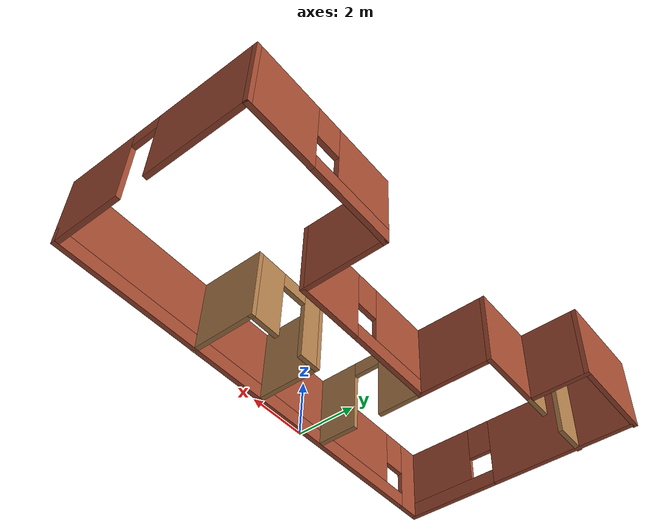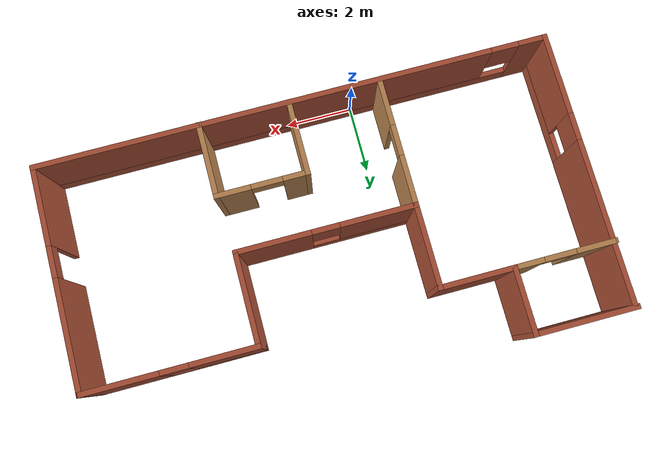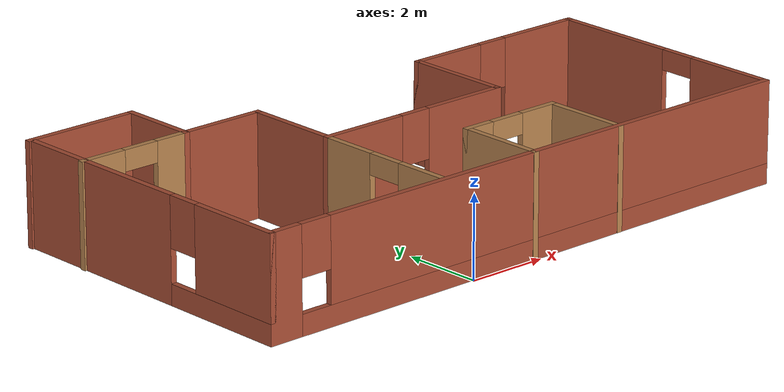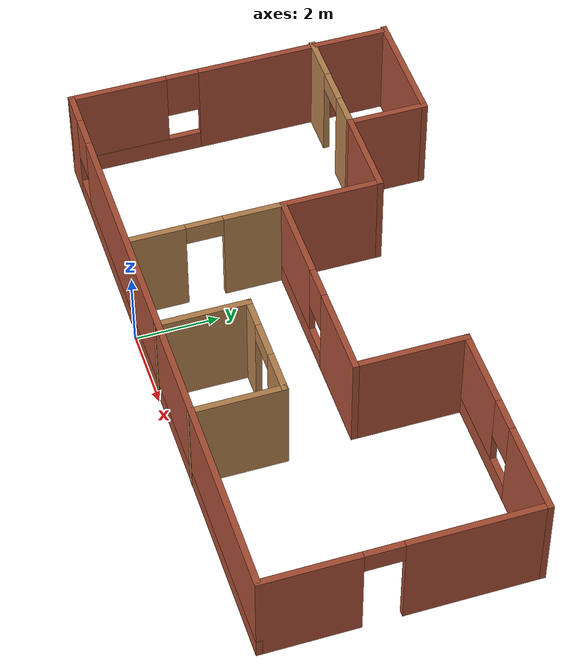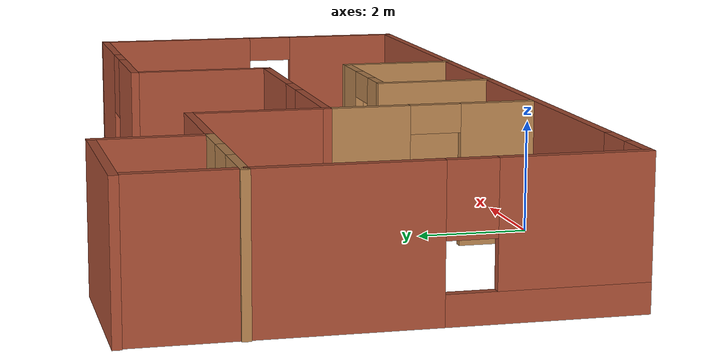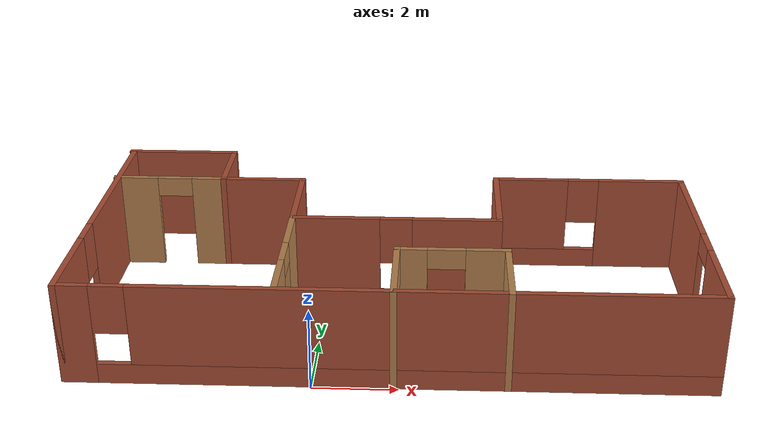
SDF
<?xml version='1.0'?>
<sdf version='1.6'>
  <model name='School'>
    <pose frame=''>1.72931 4.07996 0 0 -0 0</pose>
    <link name='Wall_10'>
      <collision name='Wall_10_Collision'>
        <geometry>
          <box>
            <size>2.25 0.15 2.5</size>
          </box>
        </geometry>
        <pose frame=''>0 0 1.25 0 -0 0</pose>
      </collision>
      <visual name='Wall_10_Visual'>
        <pose frame=''>0 0 1.25 0 -0 0</pose>
        <geometry>
          <box>
            <size>2.25 0.15 2.5</size>
          </box>
        </geometry>
        <material>
          <script>
            <uri>file://media/materials/scripts/gazebo.material</uri>
            <name>Gazebo/Bricks</name>
          </script>
          <ambient>1 1 1 1</ambient>
        </material>
        <meta>
          <layer>0</layer>
        </meta>
      </visual>
      <pose frame=''>-3.55 2.12783 0 0 -0 3.14159</pose>
    </link>
    <link name='Wall_15'>
      <collision name='Wall_15_Collision'>
        <geometry>
          <box>
            <size>2 0.15 2.5</size>
          </box>
        </geometry>
        <pose frame=''>0 0 1.25 0 -0 0</pose>
      </collision>
      <visual name='Wall_15_Visual'>
        <pose frame=''>0 0 1.25 0 -0 0</pose>
        <geometry>
          <box>
            <size>2 0.15 2.5</size>
          </box>
        </geometry>
        <material>
          <script>
            <uri>file://media/materials/scripts/gazebo.material</uri>
            <name>Gazebo/Bricks</name>
          </script>
          <ambient>1 1 1 1</ambient>
        </material>
        <meta>
          <layer>0</layer>
        </meta>
      </visual>
      <pose frame=''>-4.6 3.05282 0 0 -0 1.5708</pose>
    </link>
    <link name='Wall_16'>
      <collision name='Wall_16_Collision'>
        <geometry>
          <box>
            <size>3 0.15 2.5</size>
          </box>
        </geometry>
        <pose frame=''>0 0 1.25 0 -0 0</pose>
      </collision>
      <visual name='Wall_16_Visual'>
        <pose frame=''>0 0 1.25 0 -0 0</pose>
        <geometry>
          <box>
            <size>3 0.15 2.5</size>
          </box>
        </geometry>
        <material>
          <script>
            <uri>file://media/materials/scripts/gazebo.material</uri>
            <name>Gazebo/Bricks</name>
          </script>
          <ambient>1 1 1 1</ambient>
        </material>
        <meta>
          <layer>0</layer>
        </meta>
      </visual>
      <pose frame=''>-6.025 3.97783 0 0 -0 3.14159</pose>
    </link>
    <link name='Wall_21'>
      <pose frame=''>-6.025 2.12783 0 0 -0 3.14159</pose>
      <visual name='Wall_21_Visual_0'>
        <pose frame=''>-1.04133 0 1.25 0 -0 0</pose>
        <geometry>
          <box>
            <size>0.91735 0.15 2.5</size>
          </box>
        </geometry>
        <material>
          <script>
            <uri>file://media/materials/scripts/gazebo.material</uri>
            <name>Gazebo/Wood</name>
          </script>
          <ambient>1 1 1 1</ambient>
        </material>
        <meta>
          <layer>0</layer>
        </meta>
      </visual>
      <collision name='Wall_21_Collision_0'>
        <geometry>
          <box>
            <size>0.91735 0.15 2.5</size>
          </box>
        </geometry>
        <pose frame=''>-1.04133 0 1.25 0 -0 0</pose>
      </collision>
      <visual name='Wall_21_Visual_1'>
        <pose frame=''>0.908675 0 1.25 0 -0 0</pose>
        <geometry>
          <box>
            <size>1.18265 0.15 2.5</size>
          </box>
        </geometry>
        <material>
          <script>
            <uri>file://media/materials/scripts/gazebo.material</uri>
            <name>Gazebo/Wood</name>
          </script>
          <ambient>1 1 1 1</ambient>
        </material>
        <meta>
          <layer>0</layer>
        </meta>
      </visual>
      <collision name='Wall_21_Collision_1'>
        <geometry>
          <box>
            <size>1.18265 0.15 2.5</size>
          </box>
        </geometry>
        <pose frame=''>0.908675 0 1.25 0 -0 0</pose>
      </collision>
      <visual name='Wall_21_Visual_2'>
        <pose frame=''>-0.13265 0 2.25 0 -0 0</pose>
        <geometry>
          <box>
            <size>0.9 0.15 0.5</size>
          </box>
        </geometry>
        <material>
          <script>
            <uri>file://media/materials/scripts/gazebo.material</uri>
            <name>Gazebo/Wood</name>
          </script>
          <ambient>1 1 1 1</ambient>
        </material>
        <meta>
          <layer>0</layer>
        </meta>
      </visual>
      <collision name='Wall_21_Collision_2'>
        <geometry>
          <box>
            <size>0.9 0.15 0.5</size>
          </box>
        </geometry>
        <pose frame=''>-0.13265 0 2.25 0 -0 0</pose>
      </collision>
    </link>
    <link name='Wall_23'>
      <pose frame=''>-2.5 -2.02217 0 0 0 -1.5708</pose>
      <visual name='Wall_23_Visual_0'>
        <pose frame=''>-1.11042 0 1.25 0 -0 0</pose>
        <geometry>
          <box>
            <size>1.52915 0.15 2.5</size>
          </box>
        </geometry>
        <material>
          <script>
            <uri>file://media/materials/scripts/gazebo.material</uri>
            <name>Gazebo/Wood</name>
          </script>
          <ambient>1 1 1 1</ambient>
        </material>
        <meta>
          <layer>0</layer>
        </meta>
      </visual>
      <collision name='Wall_23_Collision_0'>
        <geometry>
          <box>
            <size>1.52915 0.15 2.5</size>
          </box>
        </geometry>
        <pose frame=''>-1.11042 0 1.25 0 -0 0</pose>
      </collision>
      <visual name='Wall_23_Visual_1'>
        <pose frame=''>1.21457 0 1.25 0 -0 0</pose>
        <geometry>
          <box>
            <size>1.32085 0.15 2.5</size>
          </box>
        </geometry>
        <material>
          <script>
            <uri>file://media/materials/scripts/gazebo.material</uri>
            <name>Gazebo/Wood</name>
          </script>
          <ambient>1 1 1 1</ambient>
        </material>
        <meta>
          <layer>0</layer>
        </meta>
      </visual>
      <collision name='Wall_23_Collision_1'>
        <geometry>
          <box>
            <size>1.32085 0.15 2.5</size>
          </box>
        </geometry>
        <pose frame=''>1.21457 0 1.25 0 -0 0</pose>
      </collision>
      <visual name='Wall_23_Visual_2'>
        <pose frame=''>0.10415 0 2.25 0 -0 0</pose>
        <geometry>
          <box>
            <size>0.9 0.15 0.5</size>
          </box>
        </geometry>
        <material>
          <script>
            <uri>file://media/materials/scripts/gazebo.material</uri>
            <name>Gazebo/Wood</name>
          </script>
          <ambient>1 1 1 1</ambient>
        </material>
        <meta>
          <layer>0</layer>
        </meta>
      </visual>
      <collision name='Wall_23_Collision_2'>
        <geometry>
          <box>
            <size>0.9 0.15 0.5</size>
          </box>
        </geometry>
        <pose frame=''>0.10415 0 2.25 0 -0 0</pose>
      </collision>
    </link>
    <link name='Wall_25'>
      <collision name='Wall_25_Collision'>
        <geometry>
          <box>
            <size>2.25 0.15 2.5</size>
          </box>
        </geometry>
        <pose frame=''>0 0 1.25 0 -0 0</pose>
      </collision>
      <visual name='Wall_25_Visual'>
        <pose frame=''>0 0 1.25 0 -0 0</pose>
        <geometry>
          <box>
            <size>2.25 0.15 2.5</size>
          </box>
        </geometry>
        <material>
          <script>
            <uri>file://media/materials/scripts/gazebo.material</uri>
            <name>Gazebo/Wood</name>
          </script>
          <ambient>1 1 1 1</ambient>
        </material>
        <meta>
          <layer>0</layer>
        </meta>
      </visual>
      <pose frame=''>0.13825 -2.92782 0 0 -0 1.5708</pose>
    </link>
    <link name='Wall_26'>
      <pose frame=''>1.43825 -1.87783 0 0 -0 0</pose>
      <visual name='Wall_26_Visual_0'>
        <pose frame=''>-0.9806 0 1.25 0 -0 0</pose>
        <geometry>
          <box>
            <size>0.7888 0.15 2.5</size>
          </box>
        </geometry>
        <material>
          <script>
            <uri>file://media/materials/scripts/gazebo.material</uri>
            <name>Gazebo/Wood</name>
          </script>
          <ambient>1 1 1 1</ambient>
        </material>
        <meta>
          <layer>0</layer>
        </meta>
      </visual>
      <collision name='Wall_26_Collision_0'>
        <geometry>
          <box>
            <size>0.7888 0.15 2.5</size>
          </box>
        </geometry>
        <pose frame=''>-0.9806 0 1.25 0 -0 0</pose>
      </collision>
      <visual name='Wall_26_Visual_1'>
        <pose frame=''>0.8444 0 1.25 0 -0 0</pose>
        <geometry>
          <box>
            <size>1.0612 0.15 2.5</size>
          </box>
        </geometry>
        <material>
          <script>
            <uri>file://media/materials/scripts/gazebo.material</uri>
            <name>Gazebo/Wood</name>
          </script>
          <ambient>1 1 1 1</ambient>
        </material>
        <meta>
          <layer>0</layer>
        </meta>
      </visual>
      <collision name='Wall_26_Collision_1'>
        <geometry>
          <box>
            <size>1.0612 0.15 2.5</size>
          </box>
        </geometry>
        <pose frame=''>0.8444 0 1.25 0 -0 0</pose>
      </collision>
      <visual name='Wall_26_Visual_2'>
        <pose frame=''>-0.1362 0 2.25 0 -0 0</pose>
        <geometry>
          <box>
            <size>0.9 0.15 0.5</size>
          </box>
        </geometry>
        <material>
          <script>
            <uri>file://media/materials/scripts/gazebo.material</uri>
            <name>Gazebo/Wood</name>
          </script>
          <ambient>1 1 1 1</ambient>
        </material>
        <meta>
          <layer>0</layer>
        </meta>
      </visual>
      <collision name='Wall_26_Collision_2'>
        <geometry>
          <box>
            <size>0.9 0.15 0.5</size>
          </box>
        </geometry>
        <pose frame=''>-0.1362 0 2.25 0 -0 0</pose>
      </collision>
    </link>
    <link name='Wall_27'>
      <collision name='Wall_27_Collision'>
        <geometry>
          <box>
            <size>2.25 0.15 2.5</size>
          </box>
        </geometry>
        <pose frame=''>0 0 1.25 0 -0 0</pose>
      </collision>
      <visual name='Wall_27_Visual'>
        <pose frame=''>0 0 1.25 0 -0 0</pose>
        <geometry>
          <box>
            <size>2.25 0.15 2.5</size>
          </box>
        </geometry>
        <material>
          <script>
            <uri>file://media/materials/scripts/gazebo.material</uri>
            <name>Gazebo/Wood</name>
          </script>
          <ambient>1 1 1 1</ambient>
        </material>
        <meta>
          <layer>0</layer>
        </meta>
      </visual>
      <pose frame=''>2.73825 -2.92782 0 0 0 -1.5708</pose>
    </link>
    <link name='Wall_3'>
      <pose frame=''>-7.4 -0.047175 0 0 0 -1.5708</pose>
      <visual name='Wall_3_Visual_0'>
        <pose frame=''>-1.61007 0 1.25 0 -0 0</pose>
        <geometry>
          <box>
            <size>4.77985 0.15 2.5</size>
          </box>
        </geometry>
        <material>
          <script>
            <uri>file://media/materials/scripts/gazebo.material</uri>
            <name>Gazebo/Bricks</name>
          </script>
          <ambient>1 1 1 1</ambient>
        </material>
        <meta>
          <layer>0</layer>
        </meta>
      </visual>
      <collision name='Wall_3_Collision_0'>
        <geometry>
          <box>
            <size>4.77985 0.15 2.5</size>
          </box>
        </geometry>
        <pose frame=''>-1.61007 0 1.25 0 -0 0</pose>
      </collision>
      <visual name='Wall_3_Visual_1'>
        <pose frame=''>2.38992 0 0.25 0 -0 0</pose>
        <geometry>
          <box>
            <size>3.22015 0.15 0.5</size>
          </box>
        </geometry>
        <material>
          <script>
            <uri>file://media/materials/scripts/gazebo.material</uri>
            <name>Gazebo/Bricks</name>
          </script>
          <ambient>1 1 1 1</ambient>
        </material>
        <meta>
          <layer>0</layer>
        </meta>
      </visual>
      <collision name='Wall_3_Collision_1'>
        <geometry>
          <box>
            <size>3.22015 0.15 0.5</size>
          </box>
        </geometry>
        <pose frame=''>2.38992 0 0.25 0 -0 0</pose>
      </collision>
      <visual name='Wall_3_Visual_2'>
        <pose frame=''>2.78993 0 1.5 0 -0 0</pose>
        <geometry>
          <box>
            <size>2.42015 0.15 2</size>
          </box>
        </geometry>
        <material>
          <script>
            <uri>file://media/materials/scripts/gazebo.material</uri>
            <name>Gazebo/Bricks</name>
          </script>
          <ambient>1 1 1 1</ambient>
        </material>
        <meta>
          <layer>0</layer>
        </meta>
      </visual>
      <collision name='Wall_3_Collision_2'>
        <geometry>
          <box>
            <size>2.42015 0.15 2</size>
          </box>
        </geometry>
        <pose frame=''>2.78993 0 1.5 0 -0 0</pose>
      </collision>
      <visual name='Wall_3_Visual_3'>
        <pose frame=''>1.17985 0 1.9 0 -0 0</pose>
        <geometry>
          <box>
            <size>0.8 0.15 1.2</size>
          </box>
        </geometry>
        <material>
          <script>
            <uri>file://media/materials/scripts/gazebo.material</uri>
            <name>Gazebo/Bricks</name>
          </script>
          <ambient>1 1 1 1</ambient>
        </material>
        <meta>
          <layer>0</layer>
        </meta>
      </visual>
      <collision name='Wall_3_Collision_3'>
        <geometry>
          <box>
            <size>0.8 0.15 1.2</size>
          </box>
        </geometry>
        <pose frame=''>1.17985 0 1.9 0 -0 0</pose>
      </collision>
    </link>
    <link name='Wall_4'>
      <pose frame=''>0.024999 -3.97218 0 0 -0 0</pose>
      <visual name='Wall_4_Visual_0'>
        <pose frame=''>-7.06738 0 1.25 0 -0 0</pose>
        <geometry>
          <box>
            <size>0.86525 0.15 2.5</size>
          </box>
        </geometry>
        <material>
          <script>
            <uri>file://media/materials/scripts/gazebo.material</uri>
            <name>Gazebo/Bricks</name>
          </script>
          <ambient>1 1 1 1</ambient>
        </material>
        <meta>
          <layer>0</layer>
        </meta>
      </visual>
      <collision name='Wall_4_Collision_0'>
        <geometry>
          <box>
            <size>0.86525 0.15 2.5</size>
          </box>
        </geometry>
        <pose frame=''>-7.06738 0 1.25 0 -0 0</pose>
      </collision>
      <visual name='Wall_4_Visual_1'>
        <pose frame=''>0.432625 0 0.25 0 -0 0</pose>
        <geometry>
          <box>
            <size>14.1348 0.15 0.5</size>
          </box>
        </geometry>
        <material>
          <script>
            <uri>file://media/materials/scripts/gazebo.material</uri>
            <name>Gazebo/Bricks</name>
          </script>
          <ambient>1 1 1 1</ambient>
        </material>
        <meta>
          <layer>0</layer>
        </meta>
      </visual>
      <collision name='Wall_4_Collision_1'>
        <geometry>
          <box>
            <size>14.1348 0.15 0.5</size>
          </box>
        </geometry>
        <pose frame=''>0.432625 0 0.25 0 -0 0</pose>
      </collision>
      <visual name='Wall_4_Visual_2'>
        <pose frame=''>0.832625 0 1.5 0 -0 0</pose>
        <geometry>
          <box>
            <size>13.3347 0.15 2</size>
          </box>
        </geometry>
        <material>
          <script>
            <uri>file://media/materials/scripts/gazebo.material</uri>
            <name>Gazebo/Bricks</name>
          </script>
          <ambient>1 1 1 1</ambient>
        </material>
        <meta>
          <layer>0</layer>
        </meta>
      </visual>
      <collision name='Wall_4_Collision_2'>
        <geometry>
          <box>
            <size>13.3347 0.15 2</size>
          </box>
        </geometry>
        <pose frame=''>0.832625 0 1.5 0 -0 0</pose>
      </collision>
      <visual name='Wall_4_Visual_3'>
        <pose frame=''>-6.23475 0 1.9 0 -0 0</pose>
        <geometry>
          <box>
            <size>0.8 0.15 1.2</size>
          </box>
        </geometry>
        <material>
          <script>
            <uri>file://media/materials/scripts/gazebo.material</uri>
            <name>Gazebo/Bricks</name>
          </script>
          <ambient>1 1 1 1</ambient>
        </material>
        <meta>
          <layer>0</layer>
        </meta>
      </visual>
      <collision name='Wall_4_Collision_3'>
        <geometry>
          <box>
            <size>0.8 0.15 1.2</size>
          </box>
        </geometry>
        <pose frame=''>-6.23475 0 1.9 0 -0 0</pose>
      </collision>
    </link>
    <link name='Wall_5'>
      <pose frame=''>7.45 -0.797175 0 0 -0 1.5708</pose>
      <visual name='Wall_5_Visual_0'>
        <pose frame=''>-2.07815 0 1.25 0 -0 0</pose>
        <geometry>
          <box>
            <size>2.3437 0.15 2.5</size>
          </box>
        </geometry>
        <material>
          <script>
            <uri>file://media/materials/scripts/gazebo.material</uri>
            <name>Gazebo/Bricks</name>
          </script>
          <ambient>0.435294 0.796078 0.67451 1</ambient>
        </material>
        <meta>
          <layer>0</layer>
        </meta>
      </visual>
      <collision name='Wall_5_Collision_0'>
        <geometry>
          <box>
            <size>2.3437 0.15 2.5</size>
          </box>
        </geometry>
        <pose frame=''>-2.07815 0 1.25 0 -0 0</pose>
      </collision>
      <visual name='Wall_5_Visual_1'>
        <pose frame=''>1.62185 0 1.25 0 -0 0</pose>
        <geometry>
          <box>
            <size>3.2563 0.15 2.5</size>
          </box>
        </geometry>
        <material>
          <script>
            <uri>file://media/materials/scripts/gazebo.material</uri>
            <name>Gazebo/Bricks</name>
          </script>
          <ambient>0.435294 0.796078 0.67451 1</ambient>
        </material>
        <meta>
          <layer>0</layer>
        </meta>
      </visual>
      <collision name='Wall_5_Collision_1'>
        <geometry>
          <box>
            <size>3.2563 0.15 2.5</size>
          </box>
        </geometry>
        <pose frame=''>1.62185 0 1.25 0 -0 0</pose>
      </collision>
      <visual name='Wall_5_Visual_2'>
        <pose frame=''>-0.4563 0 2.25 0 -0 0</pose>
        <geometry>
          <box>
            <size>0.9 0.15 0.5</size>
          </box>
        </geometry>
        <material>
          <script>
            <uri>file://media/materials/scripts/gazebo.material</uri>
            <name>Gazebo/Bricks</name>
          </script>
          <ambient>0.435294 0.796078 0.67451 1</ambient>
        </material>
        <meta>
          <layer>0</layer>
        </meta>
      </visual>
      <collision name='Wall_5_Collision_2'>
        <geometry>
          <box>
            <size>0.9 0.15 0.5</size>
          </box>
        </geometry>
        <pose frame=''>-0.4563 0 2.25 0 -0 0</pose>
      </collision>
    </link>
    <link name='Wall_6'>
      <pose frame=''>5.025 2.37783 0 0 -0 3.14159</pose>
      <visual name='Wall_6_Visual_0'>
        <pose frame=''>-1.38712 0 1.25 0 -0 0</pose>
        <geometry>
          <box>
            <size>2.22575 0.15 2.5</size>
          </box>
        </geometry>
        <material>
          <script>
            <uri>file://media/materials/scripts/gazebo.material</uri>
            <name>Gazebo/Bricks</name>
          </script>
          <ambient>1 1 1 1</ambient>
        </material>
        <meta>
          <layer>0</layer>
        </meta>
      </visual>
      <collision name='Wall_6_Collision_0'>
        <geometry>
          <box>
            <size>2.22575 0.15 2.5</size>
          </box>
        </geometry>
        <pose frame=''>-1.38712 0 1.25 0 -0 0</pose>
      </collision>
      <visual name='Wall_6_Visual_1'>
        <pose frame=''>1.11288 0 0.25 0 -0 0</pose>
        <geometry>
          <box>
            <size>2.77425 0.15 0.5</size>
          </box>
        </geometry>
        <material>
          <script>
            <uri>file://media/materials/scripts/gazebo.material</uri>
            <name>Gazebo/Bricks</name>
          </script>
          <ambient>1 1 1 1</ambient>
        </material>
        <meta>
          <layer>0</layer>
        </meta>
      </visual>
      <collision name='Wall_6_Collision_1'>
        <geometry>
          <box>
            <size>2.77425 0.15 0.5</size>
          </box>
        </geometry>
        <pose frame=''>1.11288 0 0.25 0 -0 0</pose>
      </collision>
      <visual name='Wall_6_Visual_2'>
        <pose frame=''>1.51287 0 1.5 0 -0 0</pose>
        <geometry>
          <box>
            <size>1.97425 0.15 2</size>
          </box>
        </geometry>
        <material>
          <script>
            <uri>file://media/materials/scripts/gazebo.material</uri>
            <name>Gazebo/Bricks</name>
          </script>
          <ambient>1 1 1 1</ambient>
        </material>
        <meta>
          <layer>0</layer>
        </meta>
      </visual>
      <collision name='Wall_6_Collision_2'>
        <geometry>
          <box>
            <size>1.97425 0.15 2</size>
          </box>
        </geometry>
        <pose frame=''>1.51287 0 1.5 0 -0 0</pose>
      </collision>
      <visual name='Wall_6_Visual_3'>
        <pose frame=''>0.12575 0 1.9 0 -0 0</pose>
        <geometry>
          <box>
            <size>0.8 0.15 1.2</size>
          </box>
        </geometry>
        <material>
          <script>
            <uri>file://media/materials/scripts/gazebo.material</uri>
            <name>Gazebo/Bricks</name>
          </script>
          <ambient>1 1 1 1</ambient>
        </material>
        <meta>
          <layer>0</layer>
        </meta>
      </visual>
      <collision name='Wall_6_Collision_3'>
        <geometry>
          <box>
            <size>0.8 0.15 1.2</size>
          </box>
        </geometry>
        <pose frame=''>0.12575 0 1.9 0 -0 0</pose>
      </collision>
    </link>
    <link name='Wall_7'>
      <collision name='Wall_7_Collision'>
        <geometry>
          <box>
            <size>2.75 0.15 2.5</size>
          </box>
        </geometry>
        <pose frame=''>0 0 1.25 0 -0 0</pose>
      </collision>
      <visual name='Wall_7_Visual'>
        <pose frame=''>0 0 1.25 0 -0 0</pose>
        <geometry>
          <box>
            <size>2.75 0.15 2.5</size>
          </box>
        </geometry>
        <material>
          <script>
            <uri>file://media/materials/scripts/gazebo.material</uri>
            <name>Gazebo/Bricks</name>
          </script>
          <ambient>1 1 1 1</ambient>
        </material>
        <meta>
          <layer>0</layer>
        </meta>
      </visual>
      <pose frame=''>2.6 1.07783 0 0 0 -1.5708</pose>
    </link>
    <link name='Wall_8'>
      <pose frame=''>0.05 -0.222175 0 0 -0 3.14159</pose>
      <visual name='Wall_8_Visual_0'>
        <pose frame=''>-1.51695 0 1.25 0 -0 0</pose>
        <geometry>
          <box>
            <size>2.2161 0.15 2.5</size>
          </box>
        </geometry>
        <material>
          <script>
            <uri>file://media/materials/scripts/gazebo.material</uri>
            <name>Gazebo/Bricks</name>
          </script>
          <ambient>1 1 1 1</ambient>
        </material>
        <meta>
          <layer>0</layer>
        </meta>
      </visual>
      <collision name='Wall_8_Collision_0'>
        <geometry>
          <box>
            <size>2.2161 0.15 2.5</size>
          </box>
        </geometry>
        <pose frame=''>-1.51695 0 1.25 0 -0 0</pose>
      </collision>
      <visual name='Wall_8_Visual_1'>
        <pose frame=''>1.10805 0 0.25 0 -0 0</pose>
        <geometry>
          <box>
            <size>3.0339 0.15 0.5</size>
          </box>
        </geometry>
        <material>
          <script>
            <uri>file://media/materials/scripts/gazebo.material</uri>
            <name>Gazebo/Bricks</name>
          </script>
          <ambient>1 1 1 1</ambient>
        </material>
        <meta>
          <layer>0</layer>
        </meta>
      </visual>
      <collision name='Wall_8_Collision_1'>
        <geometry>
          <box>
            <size>3.0339 0.15 0.5</size>
          </box>
        </geometry>
        <pose frame=''>1.10805 0 0.25 0 -0 0</pose>
      </collision>
      <visual name='Wall_8_Visual_2'>
        <pose frame=''>1.50805 0 1.5 0 -0 0</pose>
        <geometry>
          <box>
            <size>2.2339 0.15 2</size>
          </box>
        </geometry>
        <material>
          <script>
            <uri>file://media/materials/scripts/gazebo.material</uri>
            <name>Gazebo/Bricks</name>
          </script>
          <ambient>1 1 1 1</ambient>
        </material>
        <meta>
          <layer>0</layer>
        </meta>
      </visual>
      <collision name='Wall_8_Collision_2'>
        <geometry>
          <box>
            <size>2.2339 0.15 2</size>
          </box>
        </geometry>
        <pose frame=''>1.50805 0 1.5 0 -0 0</pose>
      </collision>
      <visual name='Wall_8_Visual_3'>
        <pose frame=''>-0.0089 0 1.9 0 -0 0</pose>
        <geometry>
          <box>
            <size>0.8 0.15 1.2</size>
          </box>
        </geometry>
        <material>
          <script>
            <uri>file://media/materials/scripts/gazebo.material</uri>
            <name>Gazebo/Bricks</name>
          </script>
          <ambient>1 1 1 1</ambient>
        </material>
        <meta>
          <layer>0</layer>
        </meta>
      </visual>
      <collision name='Wall_8_Collision_3'>
        <geometry>
          <box>
            <size>0.8 0.15 1.2</size>
          </box>
        </geometry>
        <pose frame=''>-0.0089 0 1.9 0 -0 0</pose>
      </collision>
    </link>
    <link name='Wall_9'>
      <collision name='Wall_9_Collision'>
        <geometry>
          <box>
            <size>2.5 0.15 2.5</size>
          </box>
        </geometry>
        <pose frame=''>0 0 1.25 0 -0 0</pose>
      </collision>
      <visual name='Wall_9_Visual'>
        <pose frame=''>0 0 1.25 0 -0 0</pose>
        <geometry>
          <box>
            <size>2.5 0.15 2.5</size>
          </box>
        </geometry>
        <material>
          <script>
            <uri>file://media/materials/scripts/gazebo.material</uri>
            <name>Gazebo/Bricks</name>
          </script>
          <ambient>1 1 1 1</ambient>
        </material>
        <meta>
          <layer>0</layer>
        </meta>
      </visual>
      <pose frame=''>-2.5 0.952825 0 0 -0 1.5708</pose>
    </link>
    <static>1</static>
  </model>
</sdf>
